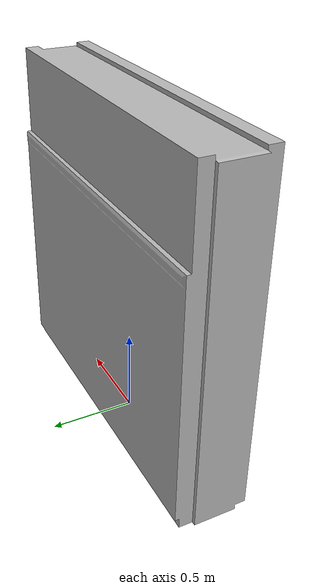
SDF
<?xml version="1.0" ?>
<sdf version="1.5">
  <model name='whitepanelwall'>
    <pose>0 0 0 0 0 0</pose>
    <static>1</static>
    <link name='body'>
      <collision name="whitepanelwall-coll">
        <pose>0 0 1 0 0 0</pose>
        <geometry>
          <box>
            <size>2 0.4 2.0</size>
          </box>
        </geometry>
      </collision>
      <visual name='whitepanelwall'>
        <cast_shadows>1</cast_shadows>
        <geometry>
          <mesh>
            <uri>model://whitepanelwall/meshes/whitepanelwall.dae</uri>
          </mesh>
        </geometry>
      </visual>
      <velocity_decay>
        <linear>0</linear>
        <angular>0</angular>
      </velocity_decay>
      <self_collide>0</self_collide>
      <kinematic>0</kinematic>
      <gravity>1</gravity>
    </link>
  </model>
</sdf>
